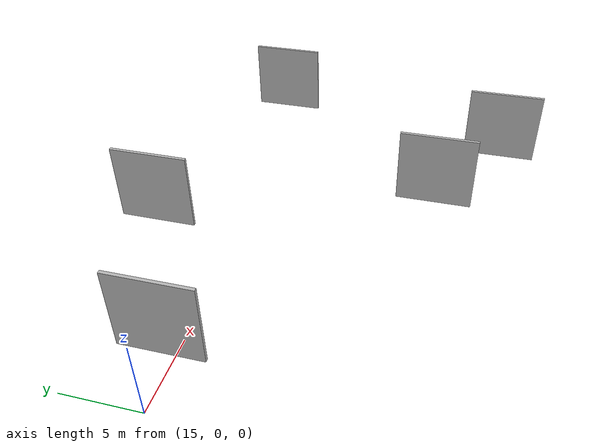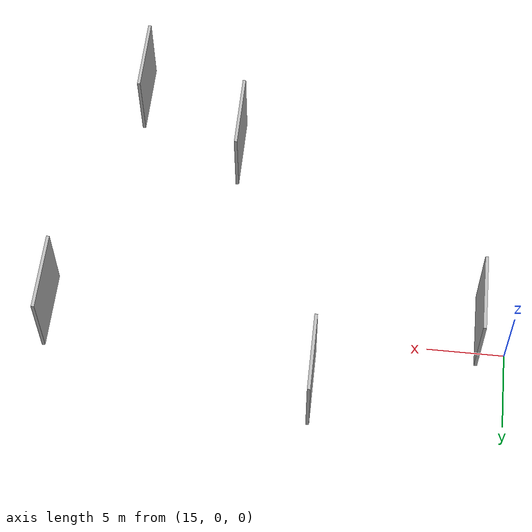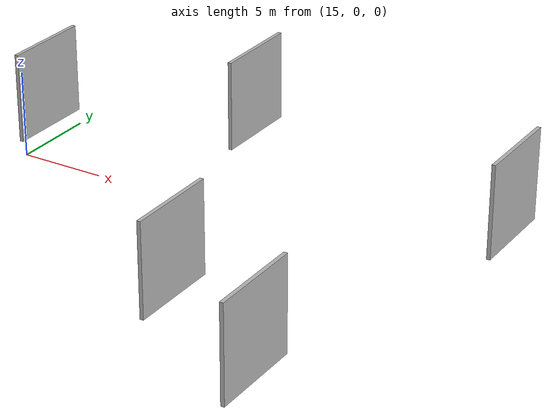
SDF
<sdf version="1.6">
 <world name="default">
  <scene>
   <sky><clouds><speed>12</speed></clouds></sky>
   <ambient>0.4 0.4 0.4 1</ambient>
   <background>0.7 0.7 0.7 1</background>
   <shadows>1</shadows>
  </scene>
  <gravity>0 0 -9.8066</gravity>
  <magnetic_field>6e-06 2.3e-05 -4.2e-05</magnetic_field>
  <physics default="0" name="default_physics" type="ode">
   <ode>
    <solver>
     <type>quick</type>
     <iters>10</iters>
     <sor>1.0</sor>
     <use_dynamic_moi_rescaling>0</use_dynamic_moi_rescaling>
    </solver>
    <constraints>
     <cfm>0</cfm>
     <erp>0.2</erp>
     <contact_max_correcting_vel>100</contact_max_correcting_vel>
     <contact_surface_layer>0.001</contact_surface_layer>
    </constraints>
   </ode>
   <max_step_size>0.004</max_step_size>
   <real_time_factor>1</real_time_factor>
   <real_time_update_rate>250</real_time_update_rate>
  </physics>
  <light name="sun" type="directional">
   <pose>0 0 10 0 0 0</pose>
   <diffuse>0.8 0.8 0.8 1</diffuse>
   <specular>0.2 0.2 0.2 1</specular>
   <attenuation>
    <range>1000</range>
    <constant>0.9</constant>
    <linear>0.01</linear>
    <quadratic>0.001</quadratic>
   </attenuation>
   <direction>-0.5 0.1 -0.9</direction>
  </light>
  <model name="grey_wall_1">
   <static>1</static>
   <pose>40.4485 -16.3753 2.5 0.000000 0.000000 1.570796</pose>
   <link name="link">
    <pose>0 0 2.50 0 0 0</pose>
    <collision name="collision"><geometry><box><size>5.00 0.2 5.00</size></box></geometry></collision>
    <visual name="visual">
     <cast_shadows>0</cast_shadows>
     <geometry><box><size>5.00 0.2 5.00</size></box></geometry>
     <material>
      <script>
       <uri>model://HANNAS_wall/materials/scripts</uri>
       <uri>model://HANNAS_wall/materials/textures</uri>
       <name>vrc/HANNAS_wall</name>
      </script>
     </material>
    </visual>
   </link>
  </model>
  <model name="grey_wall_2">
   <static>1</static>
   <pose>44.2258 0.9546 2.5 0.000000 0.000000 1.570796</pose>
   <link name="link">
    <pose>0 0 2.50 0 0 0</pose>
    <collision name="collision"><geometry><box><size>5.00 0.2 5.00</size></box></geometry></collision>
    <visual name="visual">
     <cast_shadows>0</cast_shadows>
     <geometry><box><size>5.00 0.2 5.00</size></box></geometry>
     <material>
      <script>
       <uri>model://HANNAS_wall/materials/scripts</uri>
       <uri>model://HANNAS_wall/materials/textures</uri>
       <name>vrc/HANNAS_wall</name>
      </script>
     </material>
    </visual>
   </link>
  </model>
  <model name="grey_wall_3">
   <static>1</static>
   <pose>17.0921 -0.3597 2.5 0.000000 0.000000 1.570796</pose>
   <link name="link">
    <pose>0 0 2.50 0 0 0</pose>
    <collision name="collision"><geometry><box><size>5.00 0.2 5.00</size></box></geometry></collision>
    <visual name="visual">
     <cast_shadows>0</cast_shadows>
     <geometry><box><size>5.00 0.2 5.00</size></box></geometry>
     <material>
      <script>
       <uri>model://HANNAS_wall/materials/scripts</uri>
       <uri>model://HANNAS_wall/materials/textures</uri>
       <name>vrc/HANNAS_wall</name>
      </script>
     </material>
    </visual>
   </link>
  </model>
  <model name="grey_wall_4">
   <static>1</static>
   <pose>33.4935 -12.3624 2.5 0.000000 0.000000 1.570796</pose>
   <link name="link">
    <pose>0 0 2.50 0 0 0</pose>
    <collision name="collision"><geometry><box><size>5.00 0.2 5.00</size></box></geometry></collision>
    <visual name="visual">
     <cast_shadows>0</cast_shadows>
     <geometry><box><size>5.00 0.2 5.00</size></box></geometry>
     <material>
      <script>
       <uri>model://HANNAS_wall/materials/scripts</uri>
       <uri>model://HANNAS_wall/materials/textures</uri>
       <name>vrc/HANNAS_wall</name>
      </script>
     </material>
    </visual>
   </link>
  </model>
  <model name="grey_wall_5">
   <static>1</static>
   <pose>27.1867 4.7072 2.5 0.000000 0.000000 1.570796</pose>
   <link name="link">
    <pose>0 0 2.50 0 0 0</pose>
    <collision name="collision"><geometry><box><size>5.00 0.2 5.00</size></box></geometry></collision>
    <visual name="visual">
     <cast_shadows>0</cast_shadows>
     <geometry><box><size>5.00 0.2 5.00</size></box></geometry>
     <material>
      <script>
       <uri>model://HANNAS_wall/materials/scripts</uri>
       <uri>model://HANNAS_wall/materials/textures</uri>
       <name>vrc/HANNAS_wall</name>
      </script>
     </material>
    </visual>
   </link>
  </model>
 </world>
</sdf>
